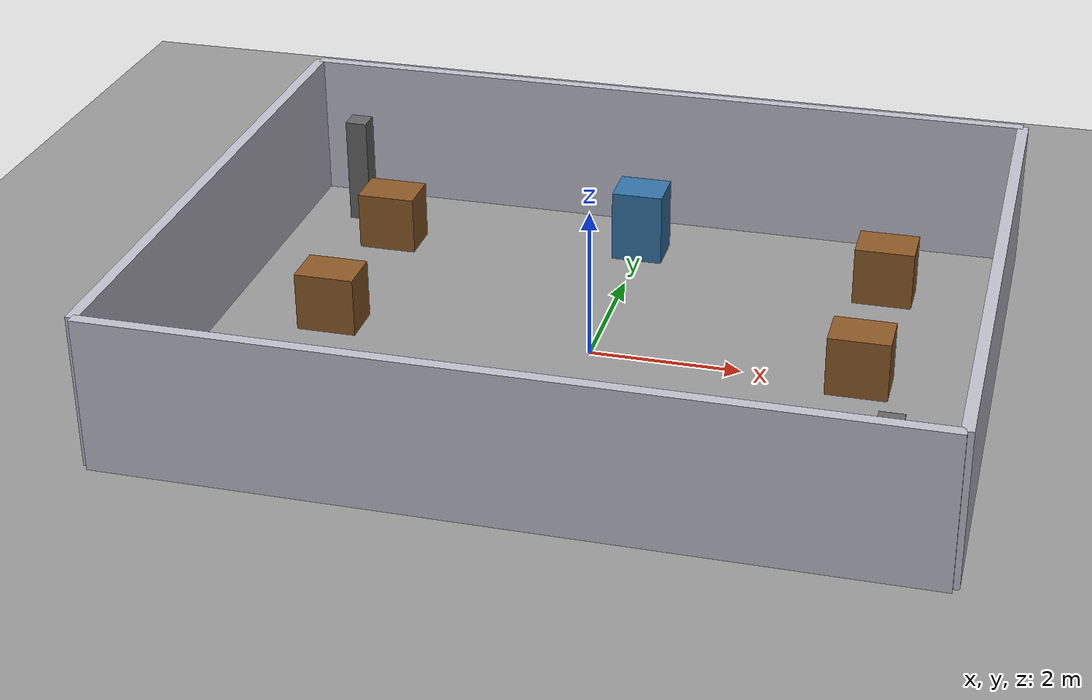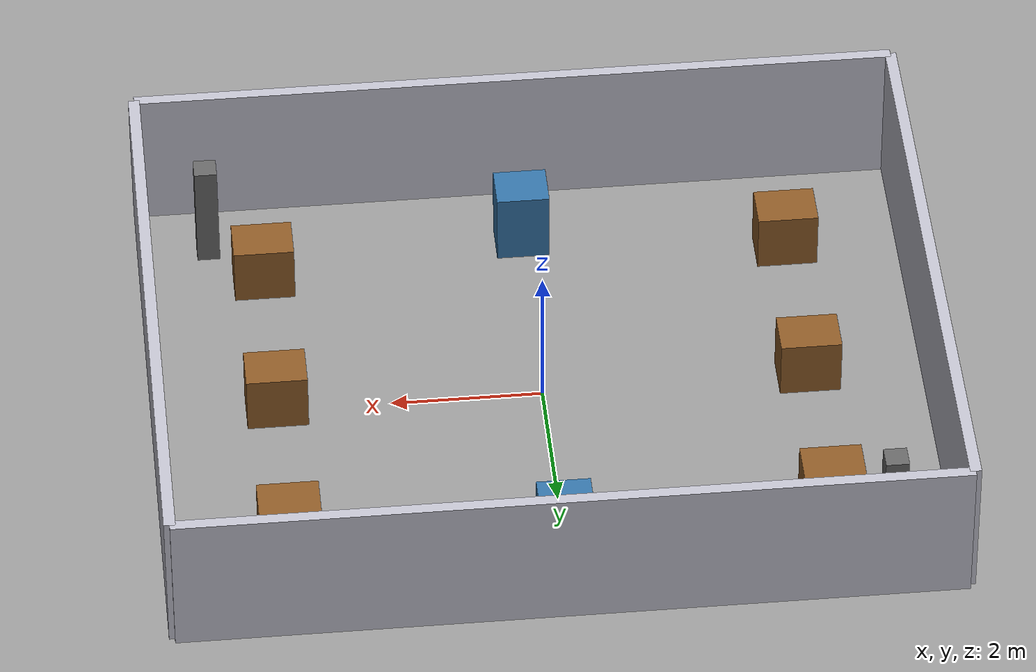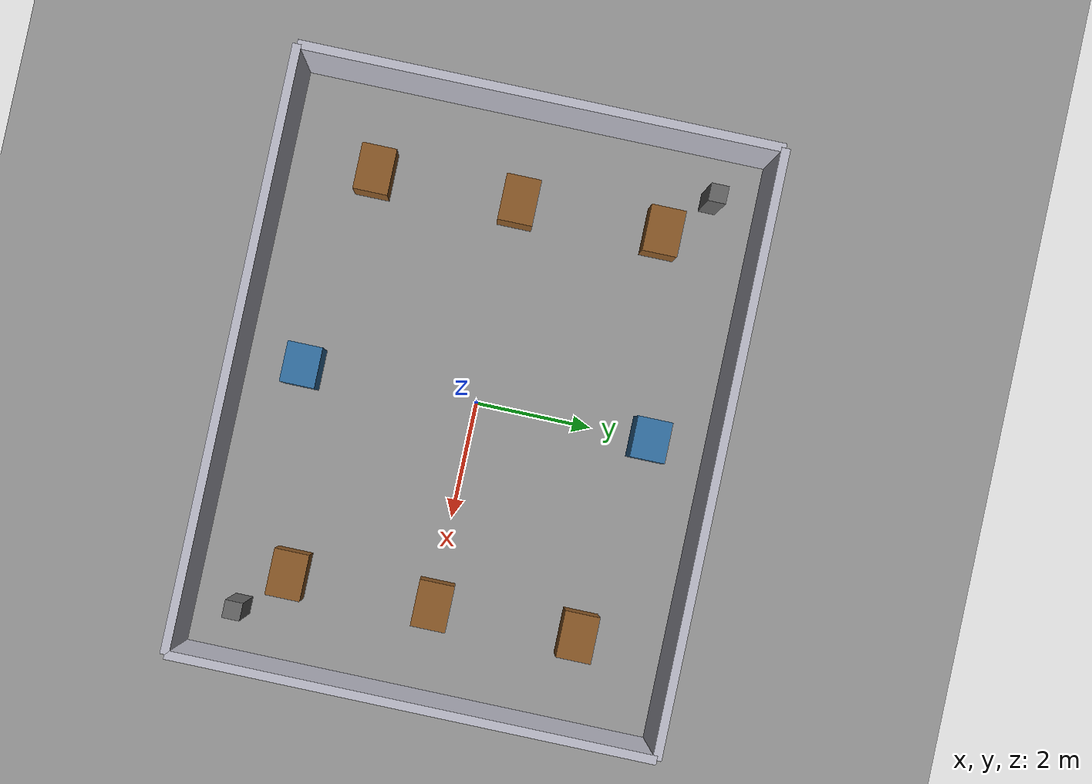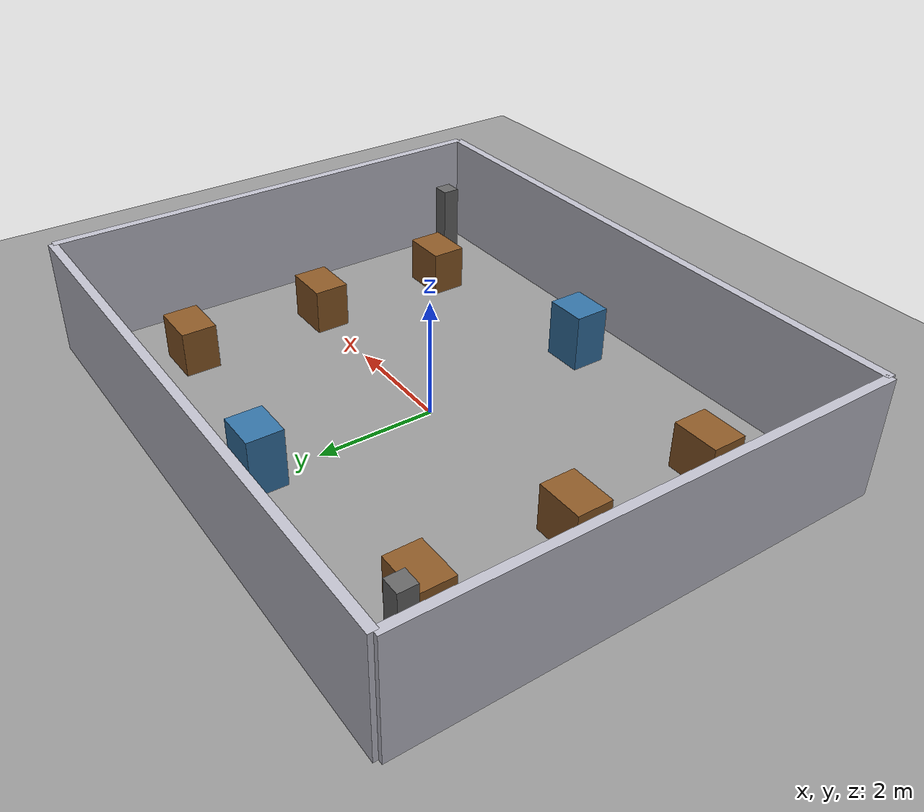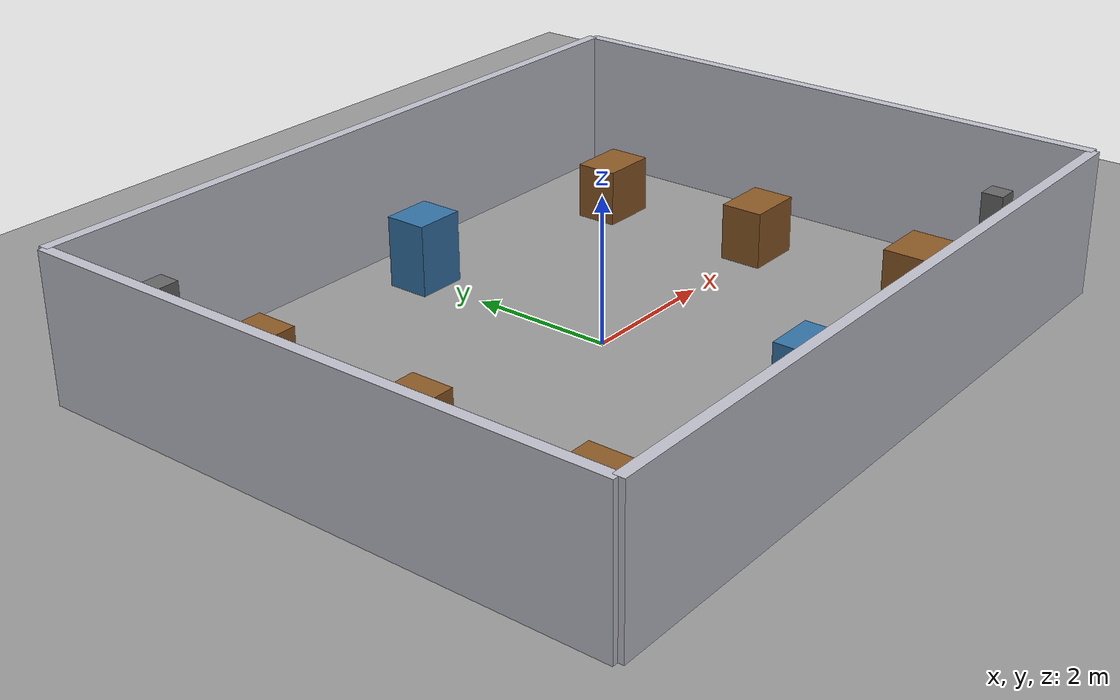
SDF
<sdf version="1.9">
 <world name="warehouse">
  <plugin filename="ignition-gazebo-physics-system" name="ignition::gazebo::systems::Physics"/>
  <plugin filename="ignition-gazebo-user-commands-system" name="ignition::gazebo::systems::UserCommands"/>
  <plugin filename="ignition-gazebo-scene-broadcaster-system" name="ignition::gazebo::systems::SceneBroadcaster"/>
  <plugin filename="ignition-gazebo-sensors-system" name="ignition::gazebo::systems::Sensors">
   <render_engine>ogre2</render_engine>
  </plugin>
  <light type="directional" name="sun">
   <pose>0 0 10 0 0 0</pose>
   <diffuse>0.9 0.9 0.9 1</diffuse>
   <specular>0.3 0.3 0.3 1</specular>
   <direction>-0.5 0.1 -0.9</direction>
  </light>
  <model name="ground_plane">
   <static>true</static>
   <link name="link">
    <collision name="collision">
     <geometry><plane><normal>0 0 1</normal><size>30 30</size></plane></geometry>
    </collision>
    <visual name="visual">
     <geometry><plane><normal>0 0 1</normal><size>30 30</size></plane></geometry>
     <material><ambient>0.6 0.6 0.6 1</ambient><diffuse>0.6 0.6 0.6 1</diffuse></material>
    </visual>
   </link>
  </model>
  <model name="wall_north">
   <static>true</static>
   <pose>0 4.075 1.0 0 0 0</pose>
   <link name="link">
    <collision name="col"><geometry><box><size>10.15 0.15 2.0</size></box></geometry></collision>
    <visual name="vis">
     <geometry><box><size>10.15 0.15 2.0</size></box></geometry>
     <material><diffuse>0.75 0.75 0.8 1</diffuse></material>
    </visual>
   </link>
  </model>
  <model name="wall_south">
   <static>true</static>
   <pose>0 -4.075 1.0 0 0 0</pose>
   <link name="link">
    <collision name="col"><geometry><box><size>10.15 0.15 2.0</size></box></geometry></collision>
    <visual name="vis">
     <geometry><box><size>10.15 0.15 2.0</size></box></geometry>
     <material><diffuse>0.75 0.75 0.8 1</diffuse></material>
    </visual>
   </link>
  </model>
  <model name="wall_east">
   <static>true</static>
   <pose>5.075 0 1.0 0 0 0</pose>
   <link name="link">
    <collision name="col"><geometry><box><size>0.15 8.15 2.0</size></box></geometry></collision>
    <visual name="vis">
     <geometry><box><size>0.15 8.15 2.0</size></box></geometry>
     <material><diffuse>0.75 0.75 0.8 1</diffuse></material>
    </visual>
   </link>
  </model>
  <model name="wall_west">
   <static>true</static>
   <pose>-5.075 0 1.0 0 0 0</pose>
   <link name="link">
    <collision name="col"><geometry><box><size>0.15 8.15 2.0</size></box></geometry></collision>
    <visual name="vis">
     <geometry><box><size>0.15 8.15 2.0</size></box></geometry>
     <material><diffuse>0.75 0.75 0.8 1</diffuse></material>
    </visual>
   </link>
  </model>
  <model name="pallet_A1">
   <static>true</static>
   <pose>-3.5 -2.5 0.4 0 0 0</pose>
   <link name="link">
    <collision name="col"><geometry><box><size>0.8 0.6 0.8</size></box></geometry></collision>
    <visual name="vis">
     <geometry><box><size>0.8 0.6 0.8</size></box></geometry>
     <material><diffuse>0.55 0.35 0.15 1</diffuse></material>
    </visual>
   </link>
  </model>
  <model name="pallet_A2">
   <static>true</static>
   <pose>-3.5 0.0 0.4 0 0 0</pose>
   <link name="link">
    <collision name="col"><geometry><box><size>0.8 0.6 0.8</size></box></geometry></collision>
    <visual name="vis">
     <geometry><box><size>0.8 0.6 0.8</size></box></geometry>
     <material><diffuse>0.55 0.35 0.15 1</diffuse></material>
    </visual>
   </link>
  </model>
  <model name="pallet_A3">
   <static>true</static>
   <pose>-3.5 2.5 0.4 0 0 0</pose>
   <link name="link">
    <collision name="col"><geometry><box><size>0.8 0.6 0.8</size></box></geometry></collision>
    <visual name="vis">
     <geometry><box><size>0.8 0.6 0.8</size></box></geometry>
     <material><diffuse>0.55 0.35 0.15 1</diffuse></material>
    </visual>
   </link>
  </model>
  <model name="pallet_B1">
   <static>true</static>
   <pose>0.0 -3.0 0.5 0 0 0</pose>
   <link name="link">
    <collision name="col"><geometry><box><size>0.7 0.6 1.0</size></box></geometry></collision>
    <visual name="vis">
     <geometry><box><size>0.7 0.6 1.0</size></box></geometry>
     <material><diffuse>0.2 0.45 0.65 1</diffuse></material>
    </visual>
   </link>
  </model>
  <model name="pallet_B2">
   <static>true</static>
   <pose>0.0 3.0 0.5 0 0 0</pose>
   <link name="link">
    <collision name="col"><geometry><box><size>0.7 0.6 1.0</size></box></geometry></collision>
    <visual name="vis">
     <geometry><box><size>0.7 0.6 1.0</size></box></geometry>
     <material><diffuse>0.2 0.45 0.65 1</diffuse></material>
    </visual>
   </link>
  </model>
  <model name="pallet_C1">
   <static>true</static>
   <pose>3.5 -2.5 0.4 0 0 0</pose>
   <link name="link">
    <collision name="col"><geometry><box><size>0.8 0.6 0.8</size></box></geometry></collision>
    <visual name="vis">
     <geometry><box><size>0.8 0.6 0.8</size></box></geometry>
     <material><diffuse>0.55 0.35 0.15 1</diffuse></material>
    </visual>
   </link>
  </model>
  <model name="pallet_C2">
   <static>true</static>
   <pose>3.5 0.0 0.4 0 0 0</pose>
   <link name="link">
    <collision name="col"><geometry><box><size>0.8 0.6 0.8</size></box></geometry></collision>
    <visual name="vis">
     <geometry><box><size>0.8 0.6 0.8</size></box></geometry>
     <material><diffuse>0.55 0.35 0.15 1</diffuse></material>
    </visual>
   </link>
  </model>
  <model name="pallet_C3">
   <static>true</static>
   <pose>3.5 2.5 0.4 0 0 0</pose>
   <link name="link">
    <collision name="col"><geometry><box><size>0.8 0.6 0.8</size></box></geometry></collision>
    <visual name="vis">
     <geometry><box><size>0.8 0.6 0.8</size></box></geometry>
     <material><diffuse>0.55 0.35 0.15 1</diffuse></material>
    </visual>
   </link>
  </model>
  <model name="pillar_nw">
   <static>true</static>
   <pose>-4.2 3.2 0.75 0 0 0</pose>
   <link name="link">
    <collision name="col"><geometry><box><size>0.3 0.3 1.5</size></box></geometry></collision>
    <visual name="vis">
     <geometry><box><size>0.3 0.3 1.5</size></box></geometry>
     <material><diffuse>0.4 0.4 0.4 1</diffuse></material>
    </visual>
   </link>
  </model>
  <model name="pillar_se">
   <static>true</static>
   <pose>4.2 -3.2 0.75 0 0 0</pose>
   <link name="link">
    <collision name="col"><geometry><box><size>0.3 0.3 1.5</size></box></geometry></collision>
    <visual name="vis">
     <geometry><box><size>0.3 0.3 1.5</size></box></geometry>
     <material><diffuse>0.4 0.4 0.4 1</diffuse></material>
    </visual>
   </link>
  </model>
 </world>
</sdf>
